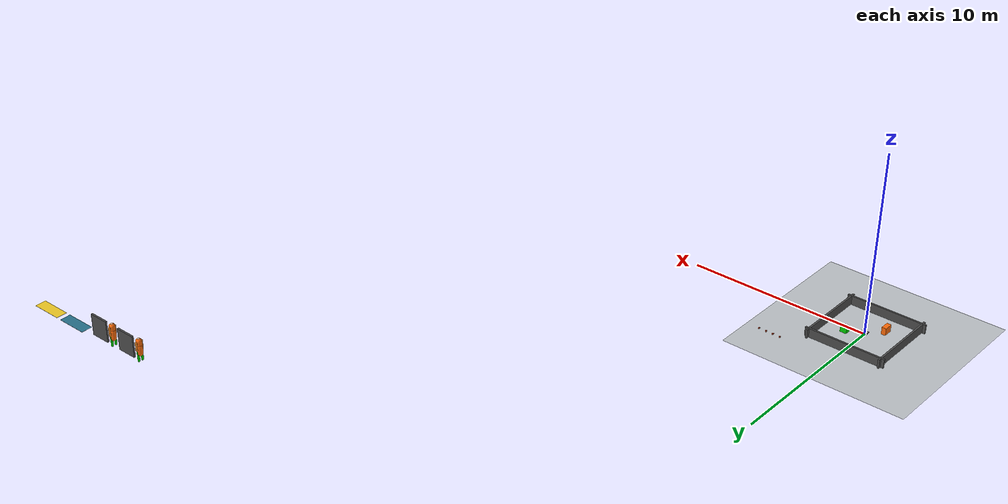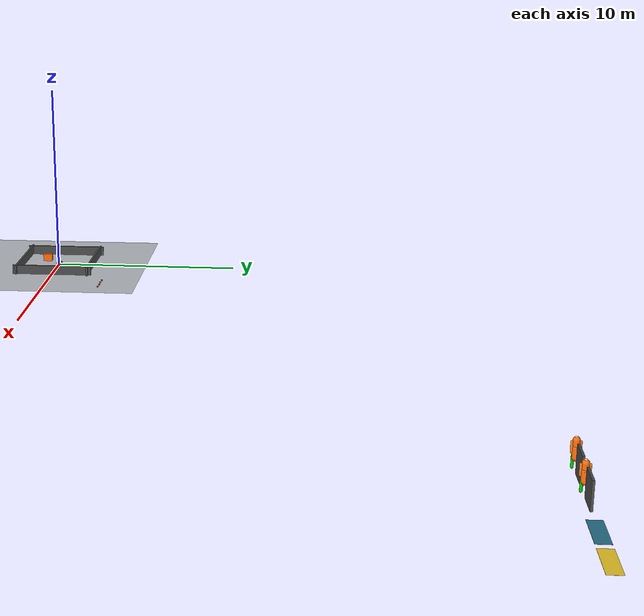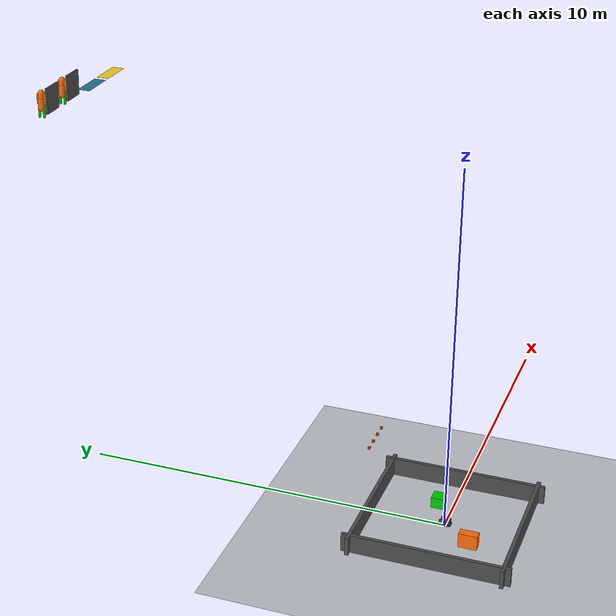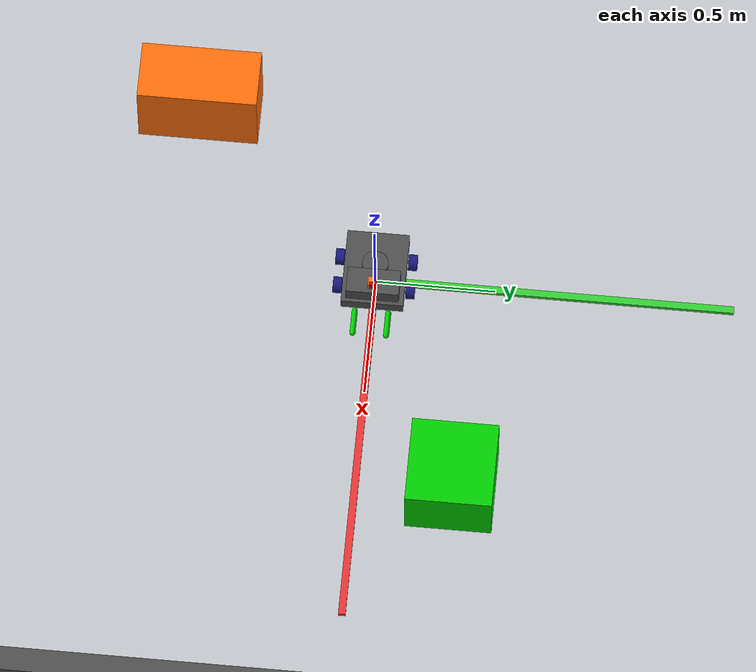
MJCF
<mujoco model="mecanumbot">

  <compiler angle="radian"/>

  <option timestep="0.002" cone="elliptic" impratio="10"/>

  <asset>
    <material name="dark" rgba="0.3 0.3 0.3 1"/>
    <material name="light_blue" rgba="0.1 0.1 0.5 1"/>
    <material name="green" rgba="0.0 0.8 0.0 1"/>
    <material name="orange" rgba="1.0 0.4235 0.0392 1"/>
    <material name="red" rgba="0.8 0.0 0.0 1"/>
    <material name="axis_x" rgba="0.9 0.2 0.2 1"/>
    <material name="axis_y" rgba="0.2 0.8 0.2 1"/>
    <material name="mat_surface" rgba="0.16 0.45 0.55 1"/>
    <material name="mat_goal" rgba="0.95 0.80 0.15 1"/>
    <material name="cube_brick" rgba="0.72 0.30 0.20 1"/>
    <material name="limb" rgba="0.95 0.55 0.15 1"/>
    <material name="skin" rgba="0.90 0.72 0.58 1"/>
    <texture name="ground_checker" type="2d" builtin="checker" rgb1="0.82 0.84 0.86" rgb2="0.68 0.70 0.72" width="512" height="512"/>
    <material name="ground" texture="ground_checker" texrepeat="10 10" reflectance="0.05"/>

  </asset>

  <default>
    <default class="visual">
      <geom contype="0" conaffinity="0" density="0" group="2"/>
    </default>

    <default class="grabber">
      <geom contype="1" conaffinity="1" density="0" group="2" friction="1.5 0.05 0.01"/>
    </default>

    <default class="wheel">
      <joint axis="0 0 1" limited="false" damping="0.2" frictionloss="0.05" armature="0.01"/>
      <velocity ctrllimited="true" ctrlrange="-30 30" kv="4.0"/>
    </default>
  </default>

  <worldbody>
    <light name="sun" pos="0 0 4" dir="0 0 -1" directional="true" diffuse="0.95 0.95 0.95" specular="0.25 0.25 0.25" ambient="0.35 0.35 0.35"/>
    <light name="fill" pos="2 -2 2.5" diffuse="0.6 0.6 0.6" specular="0.1 0.1 0.1"/>
    <geom name="floor" type="plane" size="5 5 0.1" pos="0 0 0" material="ground" friction="1.0 0.05 0.05"/>
    <geom name="x_axis_ref" type="box" pos="0.75 0 0.01" size="0.75 0.015 0.01" material="axis_x" contype="0" conaffinity="0"/>
    <geom name="y_axis_ref" type="box" pos="0 0.75 0.01" size="0.015 0.75 0.01" material="axis_y" contype="0" conaffinity="0"/>
    <geom name="wall_north" type="box" pos="0 2.0 0.25" size="2.2 0.05 0.25" material="dark"/>
    <geom name="wall_south" type="box" pos="0 -2.0 0.25" size="2.2 0.05 0.25" material="dark"/>
    <geom name="wall_east" type="box" pos="2.0 0 0.25" size="0.05 2.2 0.25" material="dark"/>
    <geom name="wall_west" type="box" pos="-2.0 0 0.25" size="0.05 2.2 0.25" material="dark"/>
    <geom name="box_obstacle_a" type="box" pos="0.9 0.4 0.15" size="0.18 0.18 0.15" material="green"/>
    <geom name="box_obstacle_b" type="box" pos="-0.7 -0.8 0.2" size="0.12 0.25 0.2" material="orange"/>

    <body name="sim_human_0" mocap="true" pos="25.0 25 0"/>

    <body name="sim_human_0_torso_lower" mocap="true" pos="25.0 25 0.45">
      <geom name="sim_human_0_torso_lower_geom" type="capsule" fromto="0 0 0 0 0 0.4" size="0.16" material="orange"/>
    </body>

    <body name="sim_human_0_torso_upper" mocap="true" pos="25.0 25 0.8500000000000001">
      <geom name="sim_human_0_torso_upper_geom" type="capsule" fromto="0 0 0 0 0 0.3" size="0.145" material="orange"/>
      <geom name="sim_human_0_head_geom" type="sphere" pos="0 0 0.38" size="0.085" material="skin"/>
    </body>

    <body name="sim_human_0_arm_left" mocap="true" pos="25.0 25.17 1.09">
      <geom name="sim_human_0_arm_left_geom" type="capsule" fromto="0 0 0 0 0 -0.42" size="0.05" material="limb"/>
    </body>

    <body name="sim_human_0_arm_right" mocap="true" pos="25.0 24.83 1.09">
      <geom name="sim_human_0_arm_right_geom" type="capsule" fromto="0 0 0 0 0 -0.42" size="0.05" material="limb"/>
    </body>

    <body name="sim_human_0_leg_left" mocap="true" pos="25.0 25.11 0.55">
      <geom name="sim_human_0_leg_left_geom" type="capsule" fromto="0 0 0 0 0 -0.5" size="0.06" material="green"/>
    </body>

    <body name="sim_human_0_leg_right" mocap="true" pos="25.0 24.89 0.55">
      <geom name="sim_human_0_leg_right_geom" type="capsule" fromto="0 0 0 0 0 -0.5" size="0.06" material="green"/>
    </body>

    <body name="sim_wall_panel_0" mocap="true" pos="26.0 25 0">
      <geom name="sim_wall_panel_0_geom" type="box" pos="0 0 0.6" size="0.55 0.05 0.6" material="dark"/>
    </body>

    <body name="sim_human_1" mocap="true" pos="27.0 25 0"/>

    <body name="sim_human_1_torso_lower" mocap="true" pos="27.0 25 0.45">
      <geom name="sim_human_1_torso_lower_geom" type="capsule" fromto="0 0 0 0 0 0.4" size="0.16" material="orange"/>
    </body>

    <body name="sim_human_1_torso_upper" mocap="true" pos="27.0 25 0.8500000000000001">
      <geom name="sim_human_1_torso_upper_geom" type="capsule" fromto="0 0 0 0 0 0.3" size="0.145" material="orange"/>
      <geom name="sim_human_1_head_geom" type="sphere" pos="0 0 0.38" size="0.085" material="skin"/>
    </body>

    <body name="sim_human_1_arm_left" mocap="true" pos="27.0 25.17 1.09">
      <geom name="sim_human_1_arm_left_geom" type="capsule" fromto="0 0 0 0 0 -0.42" size="0.05" material="limb"/>
    </body>

    <body name="sim_human_1_arm_right" mocap="true" pos="27.0 24.83 1.09">
      <geom name="sim_human_1_arm_right_geom" type="capsule" fromto="0 0 0 0 0 -0.42" size="0.05" material="limb"/>
    </body>

    <body name="sim_human_1_leg_left" mocap="true" pos="27.0 25.11 0.55">
      <geom name="sim_human_1_leg_left_geom" type="capsule" fromto="0 0 0 0 0 -0.5" size="0.06" material="green"/>
    </body>

    <body name="sim_human_1_leg_right" mocap="true" pos="27.0 24.89 0.55">
      <geom name="sim_human_1_leg_right_geom" type="capsule" fromto="0 0 0 0 0 -0.5" size="0.06" material="green"/>
    </body>

    <body name="sim_wall_panel_1" mocap="true" pos="28.0 25 0">
      <geom name="sim_wall_panel_1_geom" type="box" pos="0 0 0.6" size="0.55 0.05 0.6" material="dark"/>
    </body>

    <body name="sim_mat_0" mocap="true" pos="30 25 0">
      <geom name="sim_mat_0_geom" class="visual" type="box" pos="0 0 0.003" size="0.865 0.305 0.003" material="mat_surface"/>
    </body>

    <body name="sim_mat_1" mocap="true" pos="32 25 0">
      <geom name="sim_mat_1_geom" class="visual" type="box" pos="0 0 0.003" size="0.865 0.305 0.003" material="mat_goal"/>
    </body>

    <body name="sim_cube_0" pos="3.0 3.0 0.035">
      <freejoint name="sim_cube_0_free"/>
      <inertial pos="0 0 0" mass="0.15" diaginertia="0.0001225 0.0001225 0.0001225"/>
      <geom name="sim_cube_0_geom" type="box" size="0.035 0.035 0.035" material="cube_brick" friction="0.6 0.02 0.01"/>
    </body>

    <body name="sim_cube_1" pos="3.4 3.0 0.035">
      <freejoint name="sim_cube_1_free"/>
      <inertial pos="0 0 0" mass="0.15" diaginertia="0.0001225 0.0001225 0.0001225"/>
      <geom name="sim_cube_1_geom" type="box" size="0.035 0.035 0.035" material="cube_brick" friction="0.6 0.02 0.01"/>
    </body>

    <body name="sim_cube_2" pos="3.8 3.0 0.035">
      <freejoint name="sim_cube_2_free"/>
      <inertial pos="0 0 0" mass="0.15" diaginertia="0.0001225 0.0001225 0.0001225"/>
      <geom name="sim_cube_2_geom" type="box" size="0.035 0.035 0.035" material="cube_brick" friction="0.6 0.02 0.01"/>
    </body>

    <body name="sim_cube_3" pos="4.2 3.0 0.035">
      <freejoint name="sim_cube_3_free"/>
      <inertial pos="0 0 0" mass="0.15" diaginertia="0.0001225 0.0001225 0.0001225"/>
      <geom name="sim_cube_3_geom" type="box" size="0.035 0.035 0.035" material="cube_brick" friction="0.6 0.02 0.01"/>
    </body>

    <body name="base_link" pos="0 0 0.06">
      <inertial pos="0 0 0.06" mass="3.0" diaginertia="0.04 0.04 0.04"/>
      <joint name="base_free" type="free"/>

      <geom type="box" pos="0 0 0.055" size="0.16 0.13 0.03" material="dark" friction="1.0 0.05 0.05"/>
      <geom type="box" pos="0.09 0 0.12" size="0.055 0.11 0.04" material="dark" class="visual"/>

      <body name="wheel_frontleft" pos="0.064 0.1522 0.02345" quat="0.707 0.707 0 0">
        <inertial pos="0 0 0" mass="0.15" diaginertia="0.0002 0.0002 0.0002"/>
        <joint name="wheel_frontleft_joint" class="wheel"/>
        <geom type="cylinder" size="0.034 0.018" material="light_blue" friction="1.2 0.05 0.05"/>
      </body>

      <body name="wheel_backleft" pos="-0.064 0.1522 0.02345" quat="0.707 0.707 0 0">
        <inertial pos="0 0 0" mass="0.15" diaginertia="0.0002 0.0002 0.0002"/>
        <joint name="wheel_backleft_joint" class="wheel"/>
        <geom type="cylinder" size="0.034 0.018" material="light_blue" friction="1.2 0.05 0.05"/>
      </body>

      <body name="wheel_frontright" pos="0.064 -0.1522 0.02345" quat="0.707 -0.707 0 0">
        <inertial pos="0 0 0" mass="0.15" diaginertia="0.0002 0.0002 0.0002"/>
        <joint name="wheel_frontright_joint" class="wheel"/>
        <geom type="cylinder" size="0.034 0.018" material="light_blue" friction="1.2 0.05 0.05"/>
      </body>

      <body name="wheel_backright" pos="-0.064 -0.1522 0.02345" quat="0.707 -0.707 0 0">
        <inertial pos="0 0 0" mass="0.15" diaginertia="0.0002 0.0002 0.0002"/>
        <joint name="wheel_backright_joint" class="wheel"/>
        <geom type="cylinder" size="0.034 0.018" material="light_blue" friction="1.2 0.05 0.05"/>
      </body>

      <body name="grabber_right" pos="0.174 -0.070 0.024">
        <inertial pos="0.05 0 0" mass="0.05" diaginertia="0.0001 0.0001 0.0001"/>
        <joint name="grabber_right_joint" axis="0 0 1" range="-1.57 1.57" limited="true" damping="0.2"/>
        <geom name="grabber_right_geom" type="capsule" fromto="0 0 0 0.10 0 0" size="0.012" material="green" class="grabber"/>
      </body>

      <body name="grabber_left" pos="0.174 0.070 0.024">
        <inertial pos="0.05 0 0" mass="0.05" diaginertia="0.0001 0.0001 0.0001"/>
        <joint name="grabber_left_joint" axis="0 0 -1" range="-1.57 1.57" limited="true" damping="0.2"/>
        <geom name="grabber_left_geom" type="capsule" fromto="0 0 0 0.10 0 0" size="0.012" material="green" class="grabber"/>
      </body>

      <body name="head" pos="0.1063 0 0.1679" quat="0.707 0.707 0 0">
        <inertial pos="0 0 0" mass="0.08" diaginertia="0.0002 0.0002 0.0002"/>
        <joint name="head_joint" range="-1.57 1.57" limited="true" damping="0.2"/>
        <geom type="box" size="0.02 0.03 0.02" material="orange" class="visual"/>

        <body name="camera" pos="0.022 0.038 0">
          <geom type="box" size="0.0075 0.015 0.0135" material="red" class="visual"/>
        </body>
      </body>

      <body name="base_scan" pos="0 0 0.122">
        <geom type="cylinder" size="0.055 0.015" material="dark" class="visual"/>
      </body>
    </body>
  </worldbody>

  <actuator>
    <velocity name="bl" joint="wheel_backleft_joint"/>
    <velocity name="br" joint="wheel_backright_joint"/>
    <velocity name="fl" joint="wheel_frontleft_joint"/>
    <velocity name="fr" joint="wheel_frontright_joint"/>
    <!-- kp high enough that a closed grabber actually holds a cube against drag. -->
    <position name="grabber_left" joint="grabber_left_joint" kp="12.0"/>
    <position name="grabber_right" joint="grabber_right_joint" kp="12.0"/>
    <position name="head" joint="head_joint"/>
  </actuator>

  <contact>
    <exclude body1="base_link" body2="wheel_frontleft"/>
    <exclude body1="base_link" body2="wheel_frontright"/>
    <exclude body1="base_link" body2="wheel_backleft"/>
    <exclude body1="base_link" body2="wheel_backright"/>
  </contact>

</mujoco>
